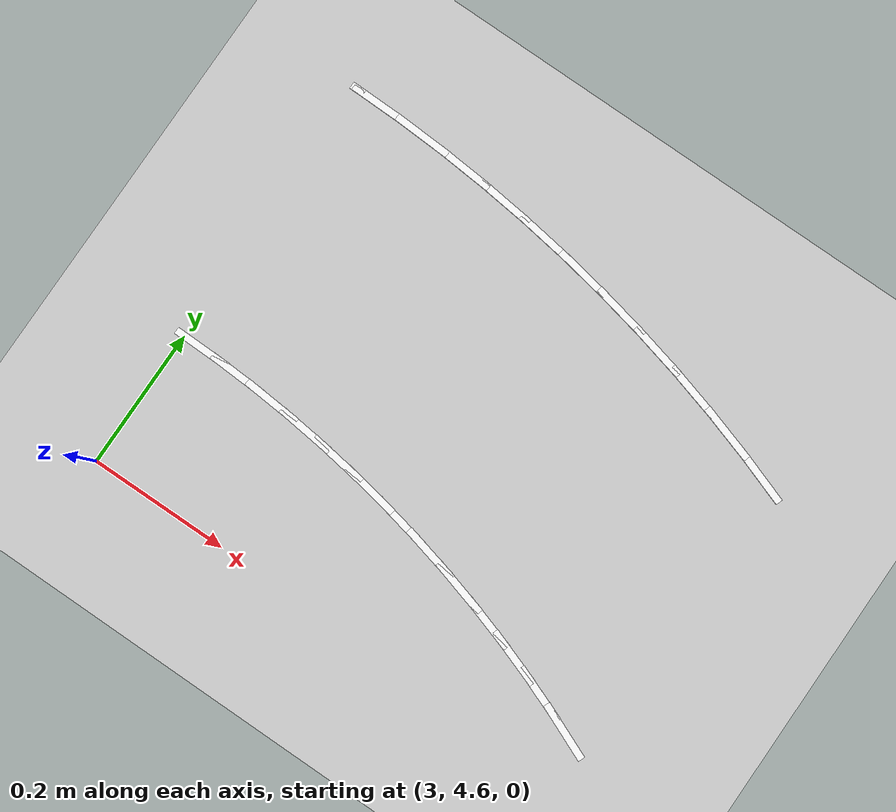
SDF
<sdf version="1.7">
 <world name="default">
  <model name="ground_plane">
   <static>1</static>
   <link name="link">
    <collision name="collision">
     <geometry><plane><normal>0 0 1</normal><size>100 100</size></plane></geometry>
     <surface>
      <contact><collide_bitmask>65535</collide_bitmask></contact>
      <friction><ode><mu>100</mu><mu2>50</mu2></ode></friction>
     </surface>
    </collision>
    <visual name="visual">
     <cast_shadows>0</cast_shadows>
     <geometry><plane><normal>0 0 1</normal><size>100 100</size></plane></geometry>
     <material>
      <script><uri>file://media/materials/scripts/gazebo.material</uri><name>Gazebo/Grey</name></script>
     </material>
    </visual>
   </link>
  </model>
  <model name="lane_line_left_186">
   <static>1</static>
   <link name="link">
    <pose>0 0 -0.004 0 -0 0</pose>
    <visual name="visual">
     <geometry><box><size>0.0841 0.01 0.01</size></box></geometry>
     <material><ambient>1 1 1 1</ambient><diffuse>1 1 1 1</diffuse></material>
    </visual>
    <collision name="collision"><geometry><box><size>0.0841 0.01 0.01</size></box></geometry></collision>
   </link>
   <pose>3.70204 4.65717 0 0 -0 2.74088</pose>
  </model>
  <model name="lane_line_left_187">
   <static>1</static>
   <link name="link">
    <pose>0 0 -0.004 0 -0 0</pose>
    <visual name="visual">
     <geometry><box><size>0.0841 0.01 0.01</size></box></geometry>
     <material><ambient>1 1 1 1</ambient><diffuse>1 1 1 1</diffuse></material>
    </visual>
    <collision name="collision"><geometry><box><size>0.0841 0.01 0.01</size></box></geometry></collision>
   </link>
   <pose>3.64856 4.67882 0 0 -0 2.77294</pose>
  </model>
  <model name="lane_line_left_188">
   <static>1</static>
   <link name="link">
    <pose>0 0 -0.004 0 -0 0</pose>
    <visual name="visual">
     <geometry><box><size>0.0841 0.01 0.01</size></box></geometry>
     <material><ambient>1 1 1 1</ambient><diffuse>1 1 1 1</diffuse></material>
    </visual>
    <collision name="collision"><geometry><box><size>0.0841 0.01 0.01</size></box></geometry></collision>
   </link>
   <pose>3.59442 4.69875 0 0 -0 2.80499</pose>
  </model>
  <model name="lane_line_right_188">
   <static>1</static>
   <link name="link">
    <pose>0 0 -0.004 0 -0 0</pose>
    <visual name="visual">
     <geometry><box><size>0.0841 0.01 0.01</size></box></geometry>
     <material><ambient>1 1 1 1</ambient><diffuse>1 1 1 1</diffuse></material>
    </visual>
    <collision name="collision"><geometry><box><size>0.0841 0.01 0.01</size></box></geometry></collision>
   </link>
   <pose>3.72653 5.0763 0 0 -0 2.80499</pose>
  </model>
  <model name="lane_line_left_189">
   <static>1</static>
   <link name="link">
    <pose>0 0 -0.004 0 -0 0</pose>
    <visual name="visual">
     <geometry><box><size>0.0841 0.01 0.01</size></box></geometry>
     <material><ambient>1 1 1 1</ambient><diffuse>1 1 1 1</diffuse></material>
    </visual>
    <collision name="collision"><geometry><box><size>0.0841 0.01 0.01</size></box></geometry></collision>
   </link>
   <pose>3.53966 4.71693 0 0 -0 2.83705</pose>
  </model>
  <model name="lane_line_right_189">
   <static>1</static>
   <link name="link">
    <pose>0 0 -0.004 0 -0 0</pose>
    <visual name="visual">
     <geometry><box><size>0.0841 0.01 0.01</size></box></geometry>
     <material><ambient>1 1 1 1</ambient><diffuse>1 1 1 1</diffuse></material>
    </visual>
    <collision name="collision"><geometry><box><size>0.0841 0.01 0.01</size></box></geometry></collision>
   </link>
   <pose>3.65961 5.09852 0 0 -0 2.83705</pose>
  </model>
  <model name="lane_line_left_190">
   <static>1</static>
   <link name="link">
    <pose>0 0 -0.004 0 -0 0</pose>
    <visual name="visual">
     <geometry><box><size>0.0841 0.01 0.01</size></box></geometry>
     <material><ambient>1 1 1 1</ambient><diffuse>1 1 1 1</diffuse></material>
    </visual>
    <collision name="collision"><geometry><box><size>0.0841 0.01 0.01</size></box></geometry></collision>
   </link>
   <pose>3.48436 4.73334 0 0 -0 2.86911</pose>
  </model>
  <model name="lane_line_right_190">
   <static>1</static>
   <link name="link">
    <pose>0 0 -0.004 0 -0 0</pose>
    <visual name="visual">
     <geometry><box><size>0.0841 0.01 0.01</size></box></geometry>
     <material><ambient>1 1 1 1</ambient><diffuse>1 1 1 1</diffuse></material>
    </visual>
    <collision name="collision"><geometry><box><size>0.0841 0.01 0.01</size></box></geometry></collision>
   </link>
   <pose>3.59201 5.11858 0 0 -0 2.86911</pose>
  </model>
  <model name="lane_line_left_191">
   <static>1</static>
   <link name="link">
    <pose>0 0 -0.004 0 -0 0</pose>
    <visual name="visual">
     <geometry><box><size>0.0841 0.01 0.01</size></box></geometry>
     <material><ambient>1 1 1 1</ambient><diffuse>1 1 1 1</diffuse></material>
    </visual>
    <collision name="collision"><geometry><box><size>0.0841 0.01 0.01</size></box></geometry></collision>
   </link>
   <pose>3.42855 4.74798 0 0 -0 2.90116</pose>
  </model>
  <model name="lane_line_right_191">
   <static>1</static>
   <link name="link">
    <pose>0 0 -0.004 0 -0 0</pose>
    <visual name="visual">
     <geometry><box><size>0.0841 0.01 0.01</size></box></geometry>
     <material><ambient>1 1 1 1</ambient><diffuse>1 1 1 1</diffuse></material>
    </visual>
    <collision name="collision"><geometry><box><size>0.0841 0.01 0.01</size></box></geometry></collision>
   </link>
   <pose>3.5238 5.13647 0 0 -0 2.90116</pose>
  </model>
  <model name="lane_line_left_192">
   <static>1</static>
   <link name="link">
    <pose>0 0 -0.004 0 -0 0</pose>
    <visual name="visual">
     <geometry><box><size>0.0841 0.01 0.01</size></box></geometry>
     <material><ambient>1 1 1 1</ambient><diffuse>1 1 1 1</diffuse></material>
    </visual>
    <collision name="collision"><geometry><box><size>0.0841 0.01 0.01</size></box></geometry></collision>
   </link>
   <pose>3.37231 4.76081 0 0 -0 2.93322</pose>
  </model>
  <model name="lane_line_right_192">
   <static>1</static>
   <link name="link">
    <pose>0 0 -0.004 0 -0 0</pose>
    <visual name="visual">
     <geometry><box><size>0.0841 0.01 0.01</size></box></geometry>
     <material><ambient>1 1 1 1</ambient><diffuse>1 1 1 1</diffuse></material>
    </visual>
    <collision name="collision"><geometry><box><size>0.0841 0.01 0.01</size></box></geometry></collision>
   </link>
   <pose>3.45505 5.15216 0 0 -0 2.93322</pose>
  </model>
  <model name="lane_line_left_193">
   <static>1</static>
   <link name="link">
    <pose>0 0 -0.004 0 -0 0</pose>
    <visual name="visual">
     <geometry><box><size>0.0841 0.01 0.01</size></box></geometry>
     <material><ambient>1 1 1 1</ambient><diffuse>1 1 1 1</diffuse></material>
    </visual>
    <collision name="collision"><geometry><box><size>0.0841 0.01 0.01</size></box></geometry></collision>
   </link>
   <pose>3.31568 4.77184 0 0 -0 2.96528</pose>
  </model>
  <model name="lane_line_right_193">
   <static>1</static>
   <link name="link">
    <pose>0 0 -0.004 0 -0 0</pose>
    <visual name="visual">
     <geometry><box><size>0.0841 0.01 0.01</size></box></geometry>
     <material><ambient>1 1 1 1</ambient><diffuse>1 1 1 1</diffuse></material>
    </visual>
    <collision name="collision"><geometry><box><size>0.0841 0.01 0.01</size></box></geometry></collision>
   </link>
   <pose>3.38584 5.16564 0 0 -0 2.96528</pose>
  </model>
  <model name="lane_line_left_194">
   <static>1</static>
   <link name="link">
    <pose>0 0 -0.004 0 -0 0</pose>
    <visual name="visual">
     <geometry><box><size>0.0841 0.01 0.01</size></box></geometry>
     <material><ambient>1 1 1 1</ambient><diffuse>1 1 1 1</diffuse></material>
    </visual>
    <collision name="collision"><geometry><box><size>0.0841 0.01 0.01</size></box></geometry></collision>
   </link>
   <pose>3.25873 4.78105 0 0 -0 2.99734</pose>
  </model>
  <model name="lane_line_right_194">
   <static>1</static>
   <link name="link">
    <pose>0 0 -0.004 0 -0 0</pose>
    <visual name="visual">
     <geometry><box><size>0.0841 0.01 0.01</size></box></geometry>
     <material><ambient>1 1 1 1</ambient><diffuse>1 1 1 1</diffuse></material>
    </visual>
    <collision name="collision"><geometry><box><size>0.0841 0.01 0.01</size></box></geometry></collision>
   </link>
   <pose>3.31623 5.17689 0 0 -0 2.99734</pose>
  </model>
  <model name="lane_line_left_195">
   <static>1</static>
   <link name="link">
    <pose>0 0 -0.004 0 -0 0</pose>
    <visual name="visual">
     <geometry><box><size>0.0841 0.01 0.01</size></box></geometry>
     <material><ambient>1 1 1 1</ambient><diffuse>1 1 1 1</diffuse></material>
    </visual>
    <collision name="collision"><geometry><box><size>0.0841 0.01 0.01</size></box></geometry></collision>
   </link>
   <pose>3.20151 4.78843 0 0 -0 3.02939</pose>
  </model>
  <model name="lane_line_right_195">
   <static>1</static>
   <link name="link">
    <pose>0 0 -0.004 0 -0 0</pose>
    <visual name="visual">
     <geometry><box><size>0.0841 0.01 0.01</size></box></geometry>
     <material><ambient>1 1 1 1</ambient><diffuse>1 1 1 1</diffuse></material>
    </visual>
    <collision name="collision"><geometry><box><size>0.0841 0.01 0.01</size></box></geometry></collision>
   </link>
   <pose>3.24629 5.18591 0 0 -0 3.02939</pose>
  </model>
  <model name="lane_line_left_196">
   <static>1</static>
   <link name="link">
    <pose>0 0 -0.004 0 -0 0</pose>
    <visual name="visual">
     <geometry><box><size>0.0841 0.01 0.01</size></box></geometry>
     <material><ambient>1 1 1 1</ambient><diffuse>1 1 1 1</diffuse></material>
    </visual>
    <collision name="collision"><geometry><box><size>0.0841 0.01 0.01</size></box></geometry></collision>
   </link>
   <pose>3.14408 4.79397 0 0 -0 3.06145</pose>
  </model>
  <model name="lane_line_right_196">
   <static>1</static>
   <link name="link">
    <pose>0 0 -0.004 0 -0 0</pose>
    <visual name="visual">
     <geometry><box><size>0.0841 0.01 0.01</size></box></geometry>
     <material><ambient>1 1 1 1</ambient><diffuse>1 1 1 1</diffuse></material>
    </visual>
    <collision name="collision"><geometry><box><size>0.0841 0.01 0.01</size></box></geometry></collision>
   </link>
   <pose>3.1761 5.19268 0 0 -0 3.06145</pose>
  </model>
  <model name="lane_line_left_197">
   <static>1</static>
   <link name="link">
    <pose>0 0 -0.004 0 -0 0</pose>
    <visual name="visual">
     <geometry><box><size>0.0841 0.01 0.01</size></box></geometry>
     <material><ambient>1 1 1 1</ambient><diffuse>1 1 1 1</diffuse></material>
    </visual>
    <collision name="collision"><geometry><box><size>0.0841 0.01 0.01</size></box></geometry></collision>
   </link>
   <pose>3.08651 4.79766 0 0 -0 3.09351</pose>
  </model>
  <model name="lane_line_right_197">
   <static>1</static>
   <link name="link">
    <pose>0 0 -0.004 0 -0 0</pose>
    <visual name="visual">
     <geometry><box><size>0.0841 0.01 0.01</size></box></geometry>
     <material><ambient>1 1 1 1</ambient><diffuse>1 1 1 1</diffuse></material>
    </visual>
    <collision name="collision"><geometry><box><size>0.0841 0.01 0.01</size></box></geometry></collision>
   </link>
   <pose>3.10574 5.1972 0 0 -0 3.09351</pose>
  </model>
  <model name="lane_line_left_198">
   <static>1</static>
   <link name="link">
    <pose>0 0 -0.004 0 -0 0</pose>
    <visual name="visual">
     <geometry><box><size>0.0841 0.01 0.01</size></box></geometry>
     <material><ambient>1 1 1 1</ambient><diffuse>1 1 1 1</diffuse></material>
    </visual>
    <collision name="collision"><geometry><box><size>0.0841 0.01 0.01</size></box></geometry></collision>
   </link>
   <pose>3.02885 4.79951 0 0 -0 3.12556</pose>
  </model>
  <model name="lane_line_right_198">
   <static>1</static>
   <link name="link">
    <pose>0 0 -0.004 0 -0 0</pose>
    <visual name="visual">
     <geometry><box><size>0.0841 0.01 0.01</size></box></geometry>
     <material><ambient>1 1 1 1</ambient><diffuse>1 1 1 1</diffuse></material>
    </visual>
    <collision name="collision"><geometry><box><size>0.0841 0.01 0.01</size></box></geometry></collision>
   </link>
   <pose>3.03526 5.19946 0 0 -0 3.12556</pose>
  </model>
  <model name="lane_line_left_199">
   <static>1</static>
   <link name="link">
    <pose>0 0 -0.004 0 -0 0</pose>
    <visual name="visual">
     <geometry><box><size>0.02 0.01 0.01</size></box></geometry>
     <material><ambient>1 1 1 1</ambient><diffuse>1 1 1 1</diffuse></material>
    </visual>
    <collision name="collision"><geometry><box><size>0.02 0.01 0.01</size></box></geometry></collision>
   </link>
   <pose>3 5.2 0 0 -0 0</pose>
  </model>
 </world>
</sdf>
